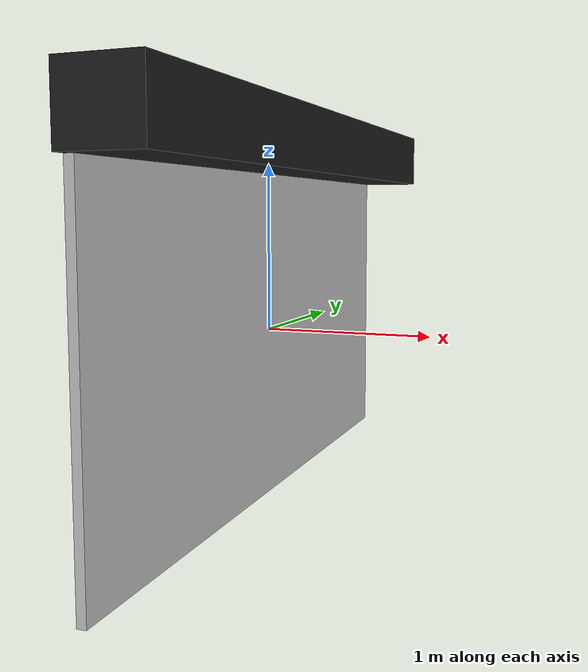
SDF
<?xml version='1.0'?>
<sdf version='1.6'>
  <model name='garage_door'>
    <link name='link'>
      <self_collide>0</self_collide>
      <enable_wind>0</enable_wind>
      <kinematic>0</kinematic>
      <pose frame=''>0 0 0 0 -0 0</pose>
      <visual name='visual'>
        <geometry>
          <box>
            <size>0.05 4 2</size>
          </box>
        </geometry>
        <material>
          <pbr>
            <metal>
              <albedo_map>model://garage_door/material/textures/BrushedMetal.jpg</albedo_map>
            </metal>
          </pbr>
          <ambient>0.5 0.5 0.5 1</ambient>
          <diffuse>0.7 0.7 0.7 1</diffuse>
          <specular>0.8 0.8 0.8 1</specular>
        </material>
        <pose frame=''>0 0 0 0 -0 0</pose>
        <transparency>0</transparency>
        <cast_shadows>1</cast_shadows>
      </visual>
    </link>
    <link name='link_0'>
      <inertial>
        <mass>0.631708</mass>
        <inertia>
          <ixx>0.913425</ixx>
          <ixy>0</ixy>
          <ixz>0</ixz>
          <iyy>0.0161823</iyy>
          <iyz>0</iyz>
          <izz>0.915671</izz>
        </inertia>
        <pose frame=''>0 0 0 0 -0 0</pose>
      </inertial>
      <pose frame=''>0.186516 0.0 1.12272 0 -0 0</pose>
      <visual name='visual'>
        <pose frame=''>0 0 0 0 -0 0</pose>
        <geometry>
          <box>
            <size>0.418365 4.1496 0.363828</size>
          </box>
        </geometry>
        <material>
          <ambient>0.5 0.5 0.5 1</ambient>
          <diffuse>0.1 0.1 0.1 1</diffuse>
          <specular>0.8 0.8 0.8 1</specular>
        </material>
        <transparency>0</transparency>
        <cast_shadows>1</cast_shadows>
      </visual>
      <collision name='collision'>
        <laser_retro>0</laser_retro>
        <max_contacts>10</max_contacts>
        <pose frame=''>0 0 0 0 -0 0</pose>
        <geometry>
          <box>
            <size>0.418365 4.15 0.363828</size>
          </box>
        </geometry>
        <surface>
          <friction>
            <ode>
              <mu>1</mu>
              <mu2>1</mu2>
              <fdir1>0 0 0</fdir1>
              <slip1>0</slip1>
              <slip2>0</slip2>
            </ode>
            <torsional>
              <coefficient>1</coefficient>
              <patch_radius>0</patch_radius>
              <surface_radius>0</surface_radius>
              <use_patch_radius>1</use_patch_radius>
              <ode>
                <slip>0</slip>
              </ode>
            </torsional>
          </friction>
          <bounce>
            <restitution_coefficient>0</restitution_coefficient>
            <threshold>1e+06</threshold>
          </bounce>
          <contact>
            <collide_without_contact>0</collide_without_contact>
            <collide_without_contact_bitmask>1</collide_without_contact_bitmask>
            <collide_bitmask>1</collide_bitmask>
            <ode>
              <soft_cfm>0</soft_cfm>
              <soft_erp>0.2</soft_erp>
              <kp>1e+13</kp>
              <kd>1</kd>
              <max_vel>0.01</max_vel>
              <min_depth>0</min_depth>
            </ode>
            <bullet>
              <split_impulse>1</split_impulse>
              <split_impulse_penetration_threshold>-0.01</split_impulse_penetration_threshold>
              <soft_cfm>0</soft_cfm>
              <soft_erp>0.2</soft_erp>
              <kp>1e+13</kp>
              <kd>1</kd>
            </bullet>
          </contact>
        </surface>
      </collision>
    </link>
    <static>1</static>
    <allow_auto_disable>1</allow_auto_disable>
  </model>
</sdf>
